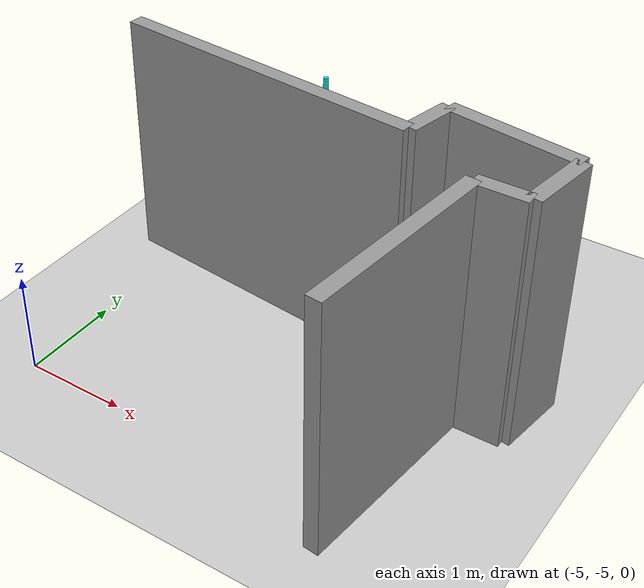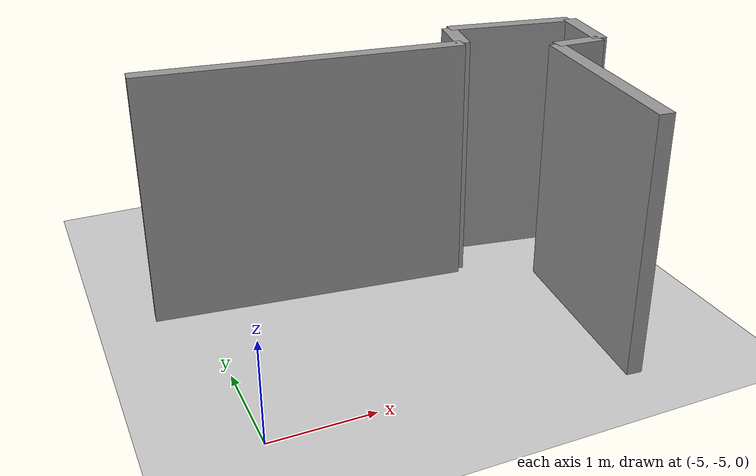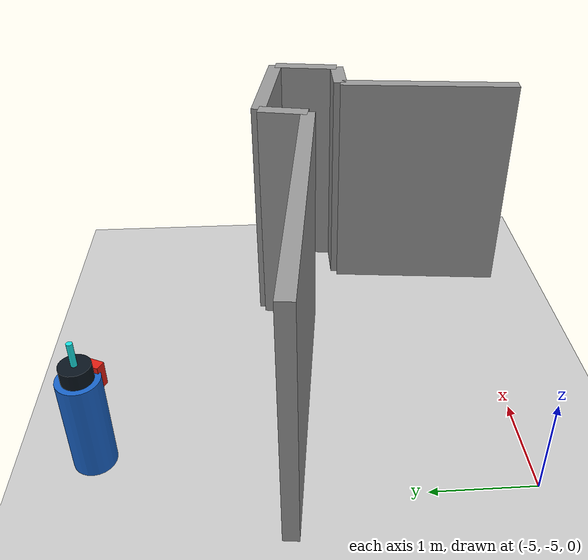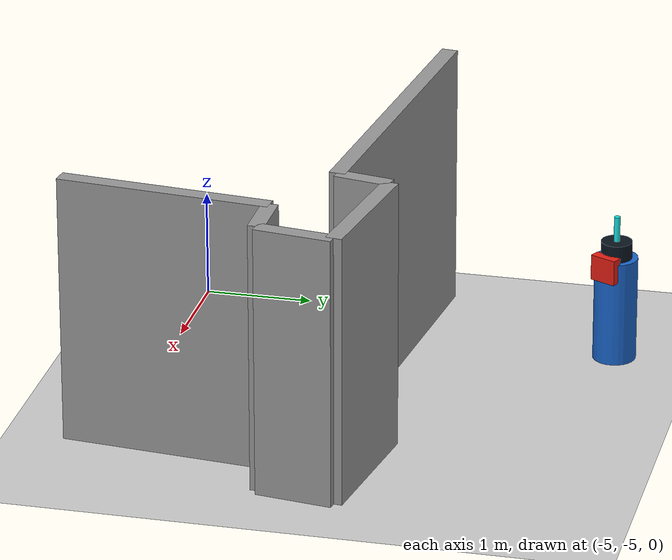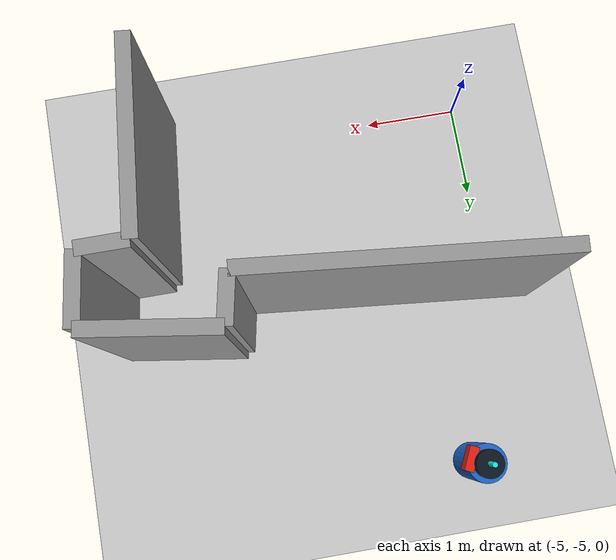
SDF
<sdf version="1.7">
 <world name="default">
  <plugin name="socnav_plugin" filename="libSocNavPlugin.so">
   <robot_name>robot</robot_name>
   <trajectory_file>/home/hunav_gz_classic_ws/SocNav3_trajectories/src3/000000988.json</trajectory_file>
   <human_slots>2</human_slots>
  </plugin>
  <light name="sun" type="directional">
   <pose>0 0 10 0 -0 0</pose>
   <diffuse>0.8 0.8 0.8 1</diffuse>
   <specular>0.2 0.2 0.2 1</specular>
   <attenuation>
    <range>1000</range>
    <constant>0.9</constant>
    <linear>0.01</linear>
    <quadratic>0.001</quadratic>
   </attenuation>
   <direction>-0.5 0.1 -0.9</direction>
   <spot><inner_angle>0</inner_angle><outer_angle>0</outer_angle><falloff>0</falloff></spot>
  </light>
  <model name="ground_plane">
   <static>1</static>
   <link name="link">
    <collision name="collision">
     <geometry><plane><normal>0 0 1</normal><size>100 100</size></plane></geometry>
     <surface><friction><ode><mu>100</mu><mu2>50</mu2></ode></friction></surface>
    </collision>
    <visual name="visual">
     <cast_shadows>0</cast_shadows>
     <geometry><plane><normal>0 0 1</normal><size>100 100</size></plane></geometry>
     <material>
      <script><uri>file://media/materials/scripts/kitchen.material</uri><name>Kitchen/CounterTop_H</name></script>
     </material>
    </visual>
   </link>
  </model>
  <gravity>0 0 -9.8</gravity>
  <magnetic_field>6e-06 2.3e-05 -4.2e-05</magnetic_field>
  <atmosphere type="adiabatic"/>
  <physics type="ode">
   <max_step_size>0.001</max_step_size>
   <real_time_factor>1</real_time_factor>
   <real_time_update_rate>1000</real_time_update_rate>
  </physics>
  <scene><ambient>0.4 0.4 0.4 1</ambient><background>0.7 0.7 0.7 1</background><shadows>1</shadows></scene>
  <audio><device>default</device></audio>
  <spherical_coordinates>
   <surface_model>EARTH_WGS84</surface_model>
   <latitude_deg>0</latitude_deg>
   <longitude_deg>0</longitude_deg>
   <elevation>0</elevation>
   <heading_deg>0</heading_deg>
  </spherical_coordinates>
  <model name="robot">
   <pose>-4.424429880947255 -0.9742598180326987 0.5 0 0 -0.4439387262836623</pose>
   <link name="link">
    <collision name="collision">
     <geometry><cylinder><radius>0.2</radius><length>1.0</length></cylinder></geometry>
    </collision>
    <visual name="visual">
     <geometry><cylinder><radius>0.2</radius><length>1.0</length></cylinder></geometry>
     <material><ambient>0.1 0.4 0.8 1</ambient><diffuse>0.1 0.4 0.8 1</diffuse></material>
    </visual>
    <visual name="robot_top">
     <pose>0 0 0.58 0 0 0</pose>
     <geometry><cylinder><radius>0.144</radius><length>0.16</length></cylinder></geometry>
     <material><ambient>0.04 0.08 0.12 1</ambient><diffuse>0.04 0.08 0.12 1</diffuse></material>
    </visual>
    <visual name="robot_front">
     <pose>0.168 0 0.44 0 0 0</pose>
     <geometry><box><size>0.096 0.256 0.24</size></box></geometry>
     <material><ambient>0.9 0.12 0.08 1</ambient><diffuse>0.9 0.12 0.08 1</diffuse></material>
    </visual>
    <visual name="robot_sensor">
     <pose>0 0 0.78 0 0 0</pose>
     <geometry><cylinder><radius>0.028000000000000004</radius><length>0.24</length></cylinder></geometry>
     <material><ambient>0.1 0.9 0.9 1</ambient><diffuse>0.1 0.9 0.9 1</diffuse></material>
    </visual>
   </link>
  </model>
  <model name="simple_world_test">
   <link name="Wall_0">
    <collision name="Wall_0_Collision">
     <geometry><box><size>3.1668334051794638 0.15 2.5</size></box></geometry>
     <pose>0 0 1.25 0 -0 0</pose>
    </collision>
    <visual name="Wall_0_Visual">
     <pose>0 0 1.25 0 -0 0</pose>
     <geometry><box><size>3.1668334051794638 0.15 2.5</size></box></geometry>
     <material>
      <script><uri>file://media/materials/scripts/gazebo.material</uri><name>Gazebo/Grey</name></script>
      <ambient>1 1 1 1</ambient>
     </material>
     <meta><layer>0</layer></meta>
    </visual>
    <pose>-3.849585015999361 -2.9228377213127534 0 0 -0 -0.10409993810959943</pose>
   </link>
   <link name="Wall_1">
    <collision name="Wall_1_Collision">
     <geometry><box><size>0.5099019513592785 0.15 2.5</size></box></geometry>
     <pose>0 0 1.25 0 -0 0</pose>
    </collision>
    <visual name="Wall_1_Visual">
     <pose>0 0 1.25 0 -0 0</pose>
     <geometry><box><size>0.5099019513592785 0.15 2.5</size></box></geometry>
     <material>
      <script><uri>file://media/materials/scripts/gazebo.material</uri><name>Gazebo/Grey</name></script>
      <ambient>1 1 1 1</ambient>
     </material>
     <meta><layer>0</layer></meta>
    </visual>
    <pose>-2.224740151051467 -2.8373737519789515 0 0 -0 1.3734007669450157</pose>
   </link>
   <link name="Wall_2">
    <collision name="Wall_2_Collision">
     <geometry><box><size>1.3152946437965904 0.15 2.5</size></box></geometry>
     <pose>0 0 1.25 0 -0 0</pose>
    </collision>
    <visual name="Wall_2_Visual">
     <pose>0 0 1.25 0 -0 0</pose>
     <geometry><box><size>1.3152946437965904 0.15 2.5</size></box></geometry>
     <material>
      <script><uri>file://media/materials/scripts/gazebo.material</uri><name>Gazebo/Grey</name></script>
      <ambient>1 1 1 1</ambient>
     </material>
     <meta><layer>0</layer></meta>
    </visual>
    <pose>-1.5247401510514673 -2.6873737519789516 0 0 -0 -0.15264932839526532</pose>
   </link>
   <link name="Wall_3">
    <collision name="Wall_3_Collision">
     <geometry><box><size>0.7071067811865472 0.15 2.5</size></box></geometry>
     <pose>0 0 1.25 0 -0 0</pose>
    </collision>
    <visual name="Wall_3_Visual">
     <pose>0 0 1.25 0 -0 0</pose>
     <geometry><box><size>0.7071067811865472 0.15 2.5</size></box></geometry>
     <material>
      <script><uri>file://media/materials/scripts/gazebo.material</uri><name>Gazebo/Grey</name></script>
      <ambient>1 1 1 1</ambient>
     </material>
     <meta><layer>0</layer></meta>
    </visual>
    <pose>-0.9247401510514672 -3.1373737519789513 0 0 -0 -1.7126933813990601</pose>
   </link>
   <link name="Wall_4">
    <collision name="Wall_4_Collision">
     <geometry><box><size>0.5 0.15 2.5</size></box></geometry>
     <pose>0 0 1.25 0 -0 0</pose>
    </collision>
    <visual name="Wall_4_Visual">
     <pose>0 0 1.25 0 -0 0</pose>
     <geometry><box><size>0.5 0.15 2.5</size></box></geometry>
     <material>
      <script><uri>file://media/materials/scripts/gazebo.material</uri><name>Gazebo/Grey</name></script>
      <ambient>1 1 1 1</ambient>
     </material>
     <meta><layer>0</layer></meta>
    </visual>
    <pose>-1.224740151051467 -3.4873737519789514 0 0 -0 3.141592653589793</pose>
   </link>
   <link name="Wall_5">
    <collision name="Wall_5_Collision">
     <geometry><box><size>1.9467173167261365 0.15 2.5</size></box></geometry>
     <pose>0 0 1.25 0 -0 0</pose>
    </collision>
    <visual name="Wall_5_Visual">
     <pose>0 0 1.25 0 -0 0</pose>
     <geometry><box><size>1.9467173167261365 0.15 2.5</size></box></geometry>
     <material>
      <script><uri>file://media/materials/scripts/gazebo.material</uri><name>Gazebo/Grey</name></script>
      <ambient>1 1 1 1</ambient>
     </material>
     <meta><layer>0</layer></meta>
    </visual>
    <pose>-1.5715929574998824 -4.455901816463103 0 0 -0 -1.6704649792860589</pose>
   </link>
   <static>1</static>
  </model>
 </world>
</sdf>
